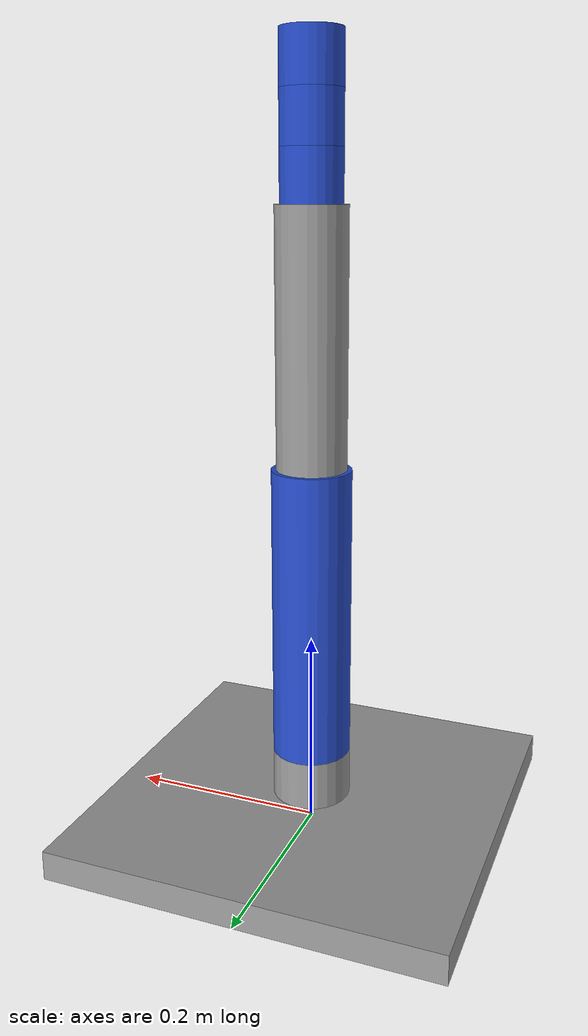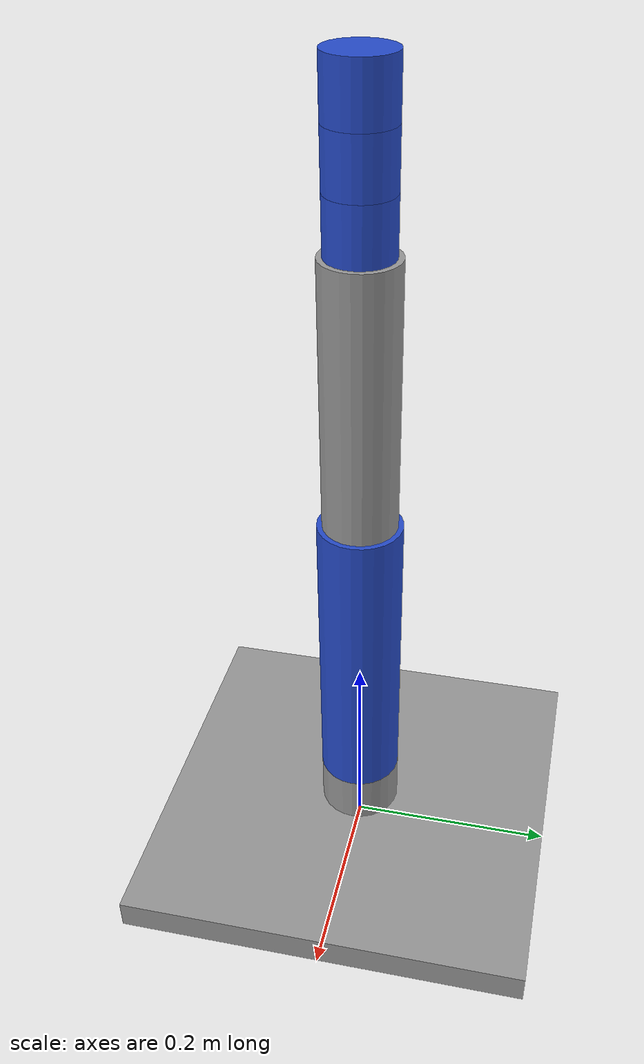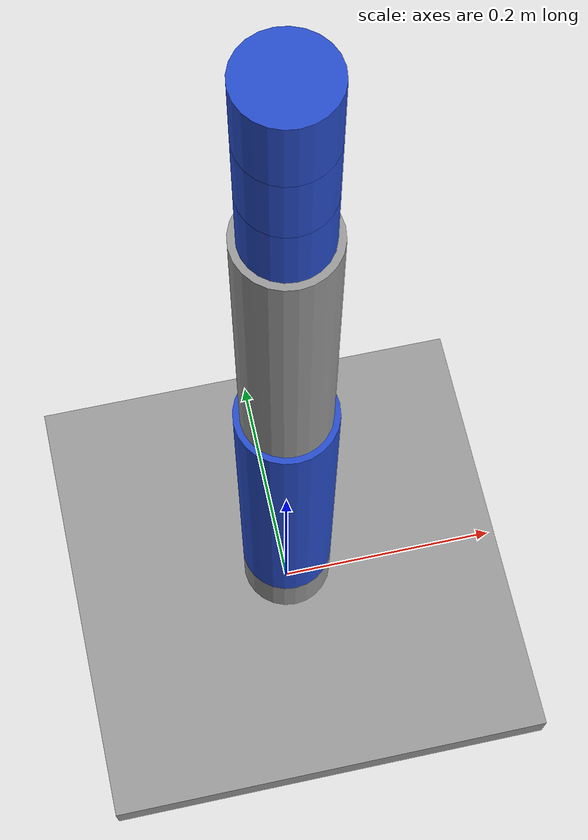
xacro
<?xml version="1.0"?>

<robot  xmlns:xacro="http://www.ros.org/wiki/xacro">
    <!-- XACRO definitions -->
    <xacro:property name="base_length" value="0.4"/>
    <xacro:property name="base_width" value="0.4"/>
    <xacro:property name="base_height" value="0.03"/>

    <xacro:property name="link1_length" value="0.05"/>
    <xacro:property name="link1_radius" value="0.04"/>

    <xacro:property name="link2_length" value="0.3"/>
    <xacro:property name="link2_radius" value="0.04"/>

    <xacro:property name="link3_length" value="0.25"/>
    <xacro:property name="link3_radius" value="0.035"/>

    <xacro:property name="link4_length" value="0.05"/>
    <xacro:property name="link4_radius" value="0.03"/>

    <xacro:property name="link5_length" value="0.05"/>
    <xacro:property name="link5_radius" value="0.03"/>

    <xacro:property name="link6_length" value="0.05"/>
    <xacro:property name="link6_radius" value="0.03"/>

    <xacro:property name="end_effector_radius" value="0.02"/>

    <!-- LINKS -->
    <link name="base_footprint"></link>

    <link name="base_link">
        <visual>
            <geometry>
                <box size="${base_length} ${base_width} ${base_height}"/>
            </geometry>
            <origin xyz="0 0 0" rpy="0 0 0"/>
            <material name="grey"/>
        </visual>
        <xacro:box_inertia m="3.0" x="${base_length}" y="${base_width}" z="${base_height}" o_xyz="0 0 0" o_rpy="0 0 0"/>
        <collision>
            <geometry>
                <box size="${base_length} ${base_width} ${base_height}"/>
            </geometry>
            <origin xyz="0 0 0" rpy="0 0 0"/>
        </collision>
    </link>

    <xacro:macro name="cylindrical_link" params="name length radius mass color">
        <link name="${name}">
            <visual>
                <geometry>
                    <cylinder length="${length}" radius="${radius}"/>
                </geometry>
                <origin xyz="0 0 ${length/2}" rpy="0 0 0"/>
                <material name="${color}"/>
            </visual>
            <xacro:box_inertia m="${mass}" x="${radius*2.0}" y="${radius*2.0}" z="${length}" o_xyz="0 0 ${length/2}" o_rpy="0 0 0"/>
            <collision>
                <geometry>
                    <box size="${radius*2} ${radius*2} ${length}"/>
                </geometry>
                <origin xyz="0 0 ${length/2}" rpy="0 0 0"/>
            </collision>
        </link>
    </xacro:macro>

    <xacro:cylindrical_link name="link1" length="${link1_length}" radius="${link1_radius}" mass="1.5" color="grey"/>
    <xacro:cylindrical_link name="link2" length="${link2_length}" radius="${link2_radius}" mass="1.0" color="blue"/>
    <xacro:cylindrical_link name="link3" length="${link3_length}" radius="${link3_radius}" mass="0.8" color="grey"/>
    <xacro:cylindrical_link name="link4" length="${link4_length}" radius="${link4_radius}" mass="0.6" color="blue"/>
    <xacro:cylindrical_link name="link5" length="${link5_length}" radius="${link5_radius}" mass="0.4" color="blue"/>
    <xacro:cylindrical_link name="link6" length="${link6_length}" radius="${link6_radius}" mass="0.2" color="blue"/>

    <link name="end_effector">
    </link>

    <!-- JOINTS -->
    <joint name="base_footprint_base" type="fixed">
        <parent link="base_footprint"/>
        <child link="base_link"/>
        <origin xyz="0 0 ${base_height/2.0}" rpy="0 0 0"/>
    </joint>

    <joint name="base_link_link1" type="revolute">
        <parent link="base_link"/>
        <child link="link1"/>
        <origin xyz="0 0 ${base_height/2.0}" rpy="0 0 0"/>
        <axis xyz="0 0 1"/>
        <limit lower="-3.14" upper="3.14" effort="10.0" velocity="1.0"/>
    </joint>

    <joint name="link1_link2" type="revolute">
        <parent link="link1"/>
        <child link="link2"/>
        <origin xyz="0 0 ${link1_length}" rpy="0 0 0"/>
        <axis xyz="0 1 0"/>
        <limit lower="-1.57" upper="1.57" effort="10.0" velocity="1.0"/>
    </joint>

    <joint name="link2_link3" type="revolute">
        <parent link="link2"/>
        <child link="link3"/>
        <origin xyz="0 0 ${link2_length}" rpy="0 0 0"/>
        <axis xyz="0 1 0"/>
        <limit lower="-2.62" upper="2.62" effort="10.0" velocity="1.0"/>
    </joint>

    <joint name="link3_link4" type="revolute">
        <parent link="link3"/>
        <child link="link4"/>
        <origin xyz="0 0 ${link3_length}" rpy="0 0 0"/>
        <axis xyz="0 0 1"/>
        <limit lower="-3.14" upper="3.14" effort="10.0" velocity="1.0"/>
    </joint>

    <joint name="link4_link5" type="revolute">
        <parent link="link4"/>
        <child link="link5"/>
        <origin xyz="0 0 ${link4_length}" rpy="0 0 0"/>
        <axis xyz="0 1 0"/>
        <limit lower="-2.35" upper="2.35" effort="10.0" velocity="1.0"/>
    </joint>

    <joint name="link5_link6" type="revolute">
        <parent link="link5"/>
        <child link="link6"/>
        <origin xyz="0 0 ${link5_length}" rpy="0 0 0"/>
        <axis xyz="1 0 0"/>
        <limit lower="-3.14" upper="3.14" effort="10.0" velocity="1.0"/>
    </joint>

    <joint name="link6_end_effector" type="continuous">
        <parent link="link6"/>
        <child link="end_effector"/>
        <origin xyz="0 0 ${link6_length}" rpy="0 0 0"/>
        <axis xyz="0 0 1"/>
    </joint>

</robot>
